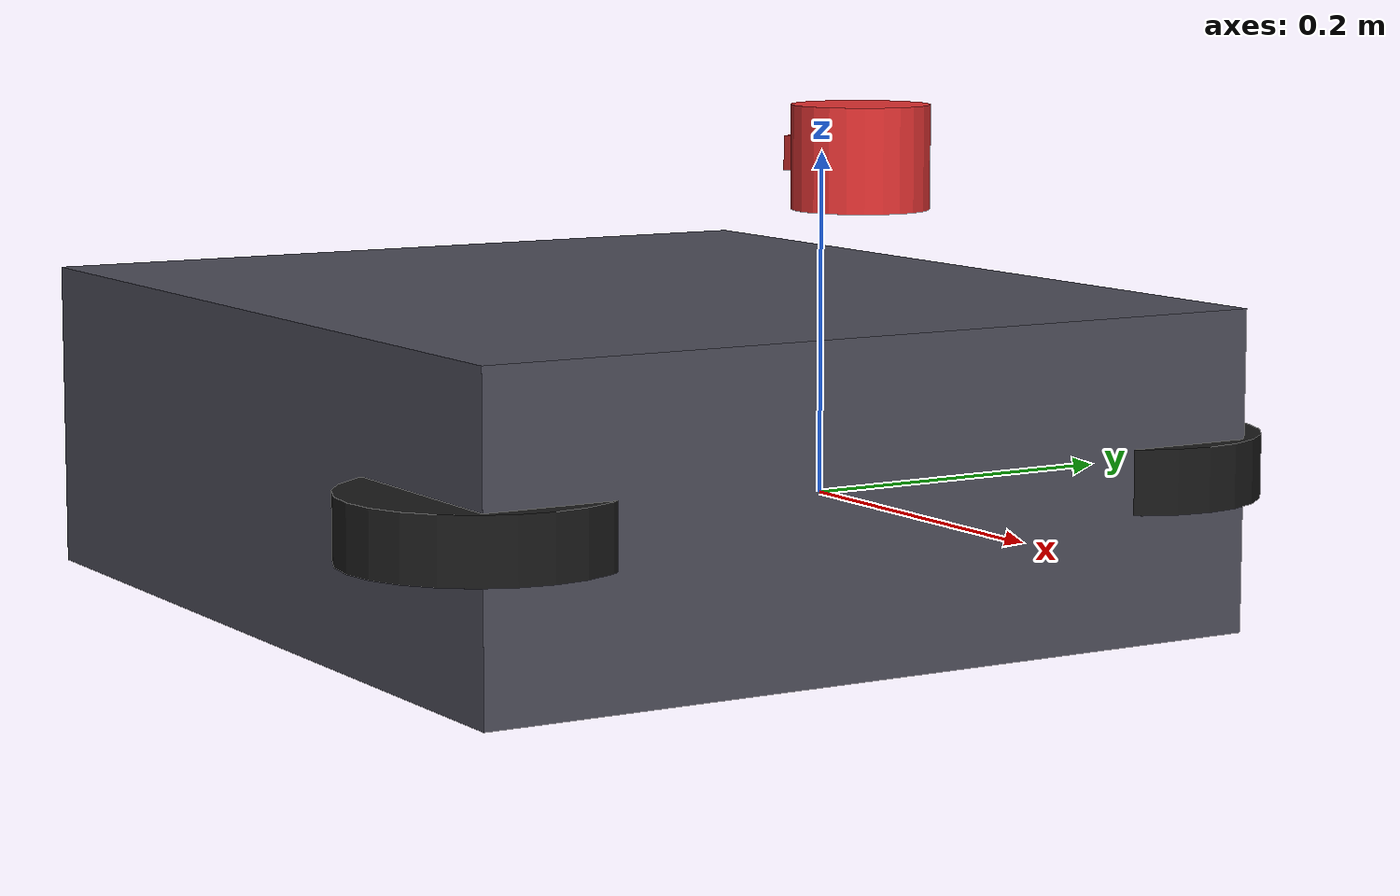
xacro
<?xml version="1.0"?>
<robot xmlns:xacro="http://www.ros.org/wiki/xacro" name="exp2">

  <!-- ─── 材质定义 ─── -->
  <material name="chassis_gray">
    <color rgba="0.3 0.3 0.35 1.0"/>
  </material>
  <material name="wheel_black">
    <color rgba="0.1 0.1 0.1 1.0"/>
  </material>
  <material name="laser_red">
    <color rgba="0.9 0.2 0.2 1.0"/>
  </material>

  <!-- ─── 宏: 惯性矩阵 (简单近似, Nav2/costmap 不依赖惯性) ─── -->
  <xacro:macro name="box_inertial" params="mass l w h">
    <inertial>
      <origin xyz="0 0 0" rpy="0 0 0"/>
      <mass value="${mass}"/>
      <inertia
        ixx="${mass * (w*w + h*h) / 12}"
        iyy="${mass * (l*l + h*h) / 12}"
        izz="${mass * (l*l + w*w) / 12}"
        ixy="0.0" ixz="0.0" iyz="0.0"/>
    </inertial>
  </xacro:macro>

  <xacro:macro name="cylinder_inertial" params="mass r length">
    <inertial>
      <origin xyz="0 0 0" rpy="0 0 0"/>
      <mass value="${mass}"/>
      <inertia
        ixx="${mass * (3*r*r + length*length) / 12}"
        iyy="${mass * r*r / 2}"
        izz="${mass * (3*r*r + length*length) / 12}"
        ixy="0.0" ixz="0.0" iyz="0.0"/>
    </inertial>
  </xacro:macro>

  <!-- ═══════════════════════════════════════════════════════════
    BASE LINK — 前轮轴前 15mm
  ═══════════════════════════════════════════════════════════════ -->
  <link name="base_link">
    <visual>
      <origin xyz="-0.230 0 0" rpy="0 0 0"/>
      <geometry>
        <box size="0.600 0.525 0.200"/>
      </geometry>
      <material name="chassis_gray"/>
    </visual>
    <collision>
      <origin xyz="-0.230 0 0" rpy="0 0 0"/>
      <geometry>
        <box size="0.600 0.525 0.200"/>
      </geometry>
    </collision>
    <xacro:box_inertial mass="15" l="0.600" w="0.525" h="0.200"/>
  </link>

  <!-- ═══════════════════════════════════════════════════════════
    左驱动轮
  ═══════════════════════════════════════════════════════════════ -->
  <joint name="base_to_left_wheel" type="continuous">
    <parent link="base_link"/>
    <child link="left_wheel"/>
    <origin xyz="0 0.225 0" rpy="0 0 0"/>
    <axis xyz="0 1 0"/>
  </joint>

  <link name="left_wheel">
    <visual>
      <geometry>
        <cylinder radius="0.0845" length="0.04"/>
      </geometry>
      <material name="wheel_black"/>
    </visual>
    <collision>
      <geometry>
        <cylinder radius="0.0845" length="0.04"/>
      </geometry>
    </collision>
    <xacro:cylinder_inertial mass="0.5" r="0.0845" length="0.04"/>
  </link>

  <!-- ═══════════════════════════════════════════════════════════
    右驱动轮
  ═══════════════════════════════════════════════════════════════ -->
  <joint name="base_to_right_wheel" type="continuous">
    <parent link="base_link"/>
    <child link="right_wheel"/>
    <origin xyz="0 -0.225 0" rpy="0 0 0"/>
    <axis xyz="0 1 0"/>
  </joint>

  <link name="right_wheel">
    <visual>
      <geometry>
        <cylinder radius="0.0845" length="0.04"/>
      </geometry>
      <material name="wheel_black"/>
    </visual>
    <collision>
      <geometry>
        <cylinder radius="0.0845" length="0.04"/>
      </geometry>
    </collision>
    <xacro:cylinder_inertial mass="0.5" r="0.0845" length="0.04"/>
  </link>

  <!-- ═══════════════════════════════════════════════════════════
    IMU (HI12M0-MI1-000)
  ═══════════════════════════════════════════════════════════ -->
  <joint name="base_to_imu" type="fixed">
    <parent link="base_link"/>
    <child link="imu_link"/>
    <origin xyz="0.01 0 0.200" rpy="0 0 0"/>
  </joint>

  <link name="imu_link">
    <visual>
      <geometry>
        <box size="0.04 0.04 0.02"/>
      </geometry>
      <material name="laser_red"/>
    </visual>
    <inertial>
      <mass value="0.01"/>
      <inertia ixx="0.00001" iyy="0.00001" izz="0.00001" ixy="0" ixz="0" iyz="0"/>
    </inertial>
  </link>

  <!-- ═══════════════════════════════════════════════════════════
    激光雷达 (科力 LSE-2027DE)
  ═══════════════════════════════════════════════════════════ -->
  <joint name="base_to_laser" type="fixed">
    <parent link="base_link"/>
    <child link="laser"/>
    <origin xyz="0.040 0 0.200" rpy="0 0 0"/>
  </joint>

  <link name="laser">
    <visual>
      <geometry>
        <cylinder radius="0.04" length="0.06"/>
      </geometry>
      <material name="laser_red"/>
    </visual>
    <collision>
      <geometry>
        <cylinder radius="0.04" length="0.06"/>
      </geometry>
    </collision>
    <inertial>
      <mass value="0.3"/>
      <inertia ixx="0.001" iyy="0.001" izz="0.001" ixy="0" ixz="0" iyz="0"/>
    </inertial>
  </link>

</robot>
